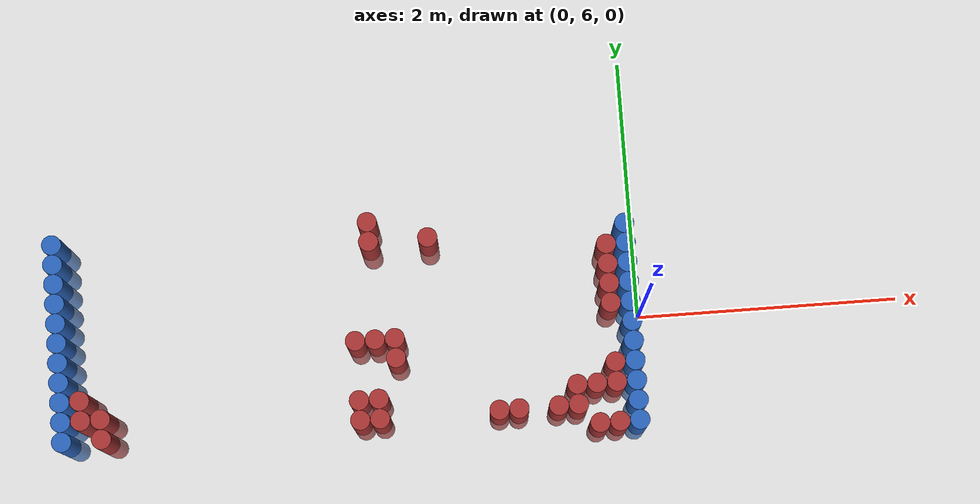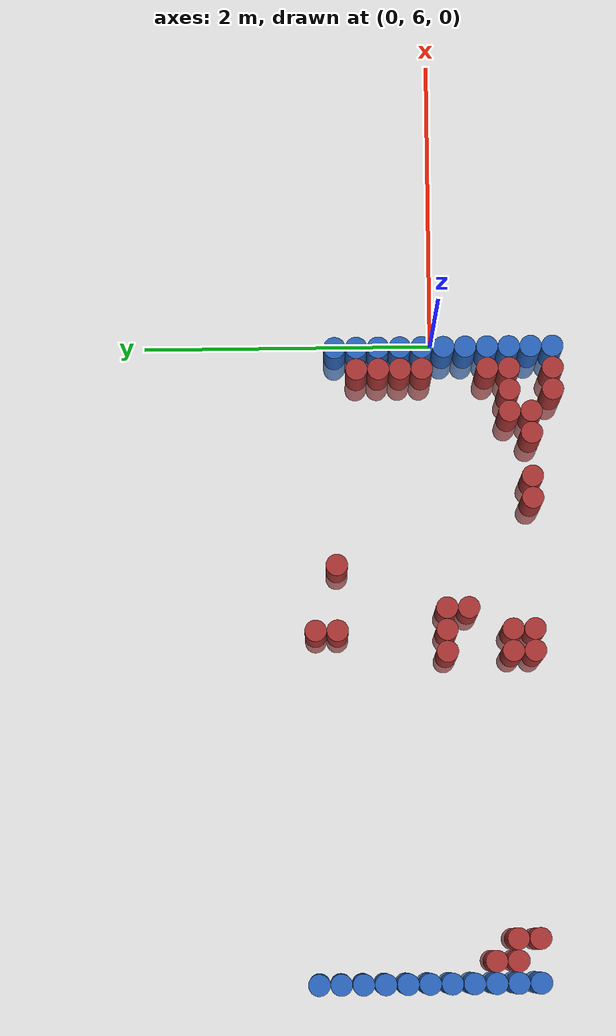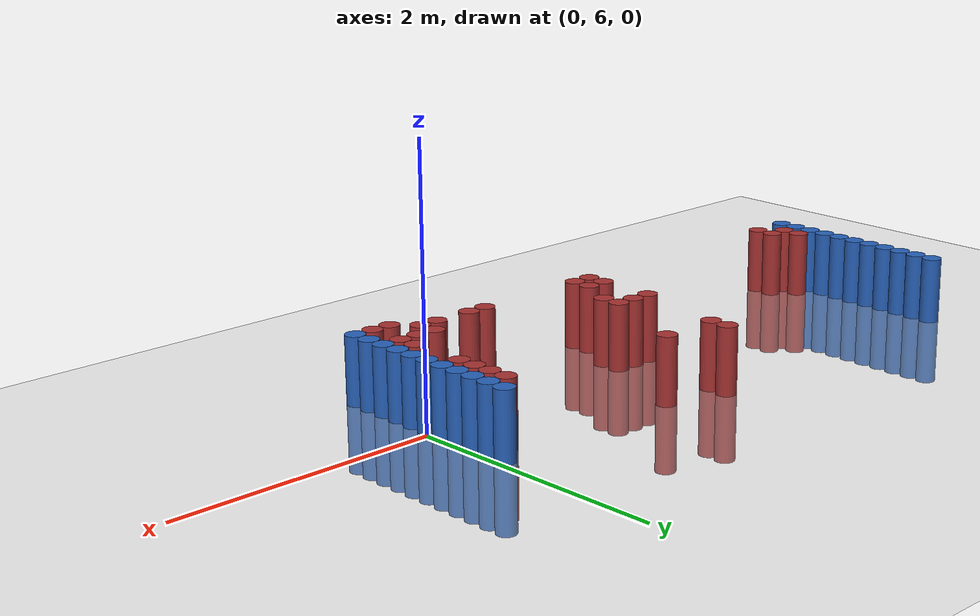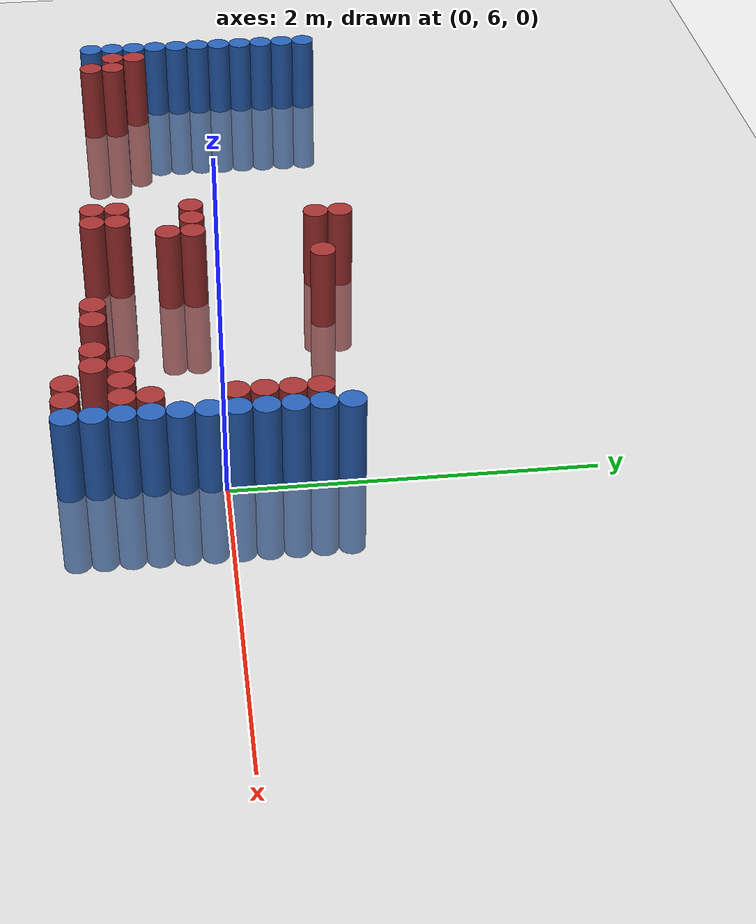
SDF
<sdf version="1.6">
 <world name="default">
  <model name="ground_plane">
   <static>1</static>
   <link name="link">
    <collision name="collision">
     <geometry><plane><normal>0 0 1</normal><size>100 100</size></plane></geometry>
     <surface><friction><ode><mu>100</mu><mu2>50</mu2></ode></friction></surface>
    </collision>
    <visual name="visual">
     <cast_shadows>0</cast_shadows>
     <geometry><plane><normal>0 0 1</normal><size>100 100</size></plane></geometry>
     <material>
      <script><uri>file://media/materials/scripts/gazebo.material</uri><name>Gazebo/Grey</name></script>
     </material>
    </visual>
   </link>
  </model>
  <model name="unit_cylinder_97">
   <static>1</static>
   <pose>-4.425000 5.325000 0.000000 0.000000 0.000000 0.000000</pose>
   <link name="link">
    <inertial>
     <mass>1</mass>
     <inertia><ixx>0.145833</ixx><ixy>0</ixy><ixz>0</ixz><iyy>0.145833</iyy><iyz>0</iyz><izz>0.125</izz></inertia>
    </inertial>
    <collision name="collision">
     <geometry><cylinder><radius>0.075000</radius><length>1</length></cylinder></geometry>
    </collision>
    <visual name="visual">
     <geometry><cylinder><radius>0.075000</radius><length>1</length></cylinder></geometry>
     <material>
      <ambient>0.152000 0.379000 0.720000 1</ambient>
      <diffuse>0.152000 0.379000 0.720000 1</diffuse>
     </material>
     <material>
      <script><name>Gazebo/Grey</name><uri>file://media/materials/scripts/gazebo.material</uri></script>
     </material>
    </visual>
   </link>
  </model>
  <model name="unit_cylinder_98">
   <static>1</static>
   <pose>-4.425000 5.475000 0.000000 0.000000 0.000000 0.000000</pose>
   <link name="link">
    <inertial>
     <mass>1</mass>
     <inertia><ixx>0.145833</ixx><ixy>0</ixy><ixz>0</ixz><iyy>0.145833</iyy><iyz>0</iyz><izz>0.125</izz></inertia>
    </inertial>
    <collision name="collision">
     <geometry><cylinder><radius>0.075000</radius><length>1</length></cylinder></geometry>
    </collision>
    <visual name="visual">
     <geometry><cylinder><radius>0.075000</radius><length>1</length></cylinder></geometry>
     <material>
      <ambient>0.152000 0.379000 0.720000 1</ambient>
      <diffuse>0.152000 0.379000 0.720000 1</diffuse>
     </material>
     <material>
      <script><name>Gazebo/Grey</name><uri>file://media/materials/scripts/gazebo.material</uri></script>
     </material>
    </visual>
   </link>
  </model>
  <model name="unit_cylinder_99">
   <static>1</static>
   <pose>-4.425000 5.625000 0.000000 0.000000 0.000000 0.000000</pose>
   <link name="link">
    <inertial>
     <mass>1</mass>
     <inertia><ixx>0.145833</ixx><ixy>0</ixy><ixz>0</ixz><iyy>0.145833</iyy><iyz>0</iyz><izz>0.125</izz></inertia>
    </inertial>
    <collision name="collision">
     <geometry><cylinder><radius>0.075000</radius><length>1</length></cylinder></geometry>
    </collision>
    <visual name="visual">
     <geometry><cylinder><radius>0.075000</radius><length>1</length></cylinder></geometry>
     <material>
      <ambient>0.152000 0.379000 0.720000 1</ambient>
      <diffuse>0.152000 0.379000 0.720000 1</diffuse>
     </material>
     <material>
      <script><name>Gazebo/Grey</name><uri>file://media/materials/scripts/gazebo.material</uri></script>
     </material>
    </visual>
   </link>
  </model>
  <model name="unit_cylinder_100">
   <static>1</static>
   <pose>-4.425000 5.775000 0.000000 0.000000 0.000000 0.000000</pose>
   <link name="link">
    <inertial>
     <mass>1</mass>
     <inertia><ixx>0.145833</ixx><ixy>0</ixy><ixz>0</ixz><iyy>0.145833</iyy><iyz>0</iyz><izz>0.125</izz></inertia>
    </inertial>
    <collision name="collision">
     <geometry><cylinder><radius>0.075000</radius><length>1</length></cylinder></geometry>
    </collision>
    <visual name="visual">
     <geometry><cylinder><radius>0.075000</radius><length>1</length></cylinder></geometry>
     <material>
      <ambient>0.152000 0.379000 0.720000 1</ambient>
      <diffuse>0.152000 0.379000 0.720000 1</diffuse>
     </material>
     <material>
      <script><name>Gazebo/Grey</name><uri>file://media/materials/scripts/gazebo.material</uri></script>
     </material>
    </visual>
   </link>
  </model>
  <model name="unit_cylinder_101">
   <static>1</static>
   <pose>-4.425000 5.925000 0.000000 0.000000 0.000000 0.000000</pose>
   <link name="link">
    <inertial>
     <mass>1</mass>
     <inertia><ixx>0.145833</ixx><ixy>0</ixy><ixz>0</ixz><iyy>0.145833</iyy><iyz>0</iyz><izz>0.125</izz></inertia>
    </inertial>
    <collision name="collision">
     <geometry><cylinder><radius>0.075000</radius><length>1</length></cylinder></geometry>
    </collision>
    <visual name="visual">
     <geometry><cylinder><radius>0.075000</radius><length>1</length></cylinder></geometry>
     <material>
      <ambient>0.152000 0.379000 0.720000 1</ambient>
      <diffuse>0.152000 0.379000 0.720000 1</diffuse>
     </material>
     <material>
      <script><name>Gazebo/Grey</name><uri>file://media/materials/scripts/gazebo.material</uri></script>
     </material>
    </visual>
   </link>
  </model>
  <model name="unit_cylinder_102">
   <static>1</static>
   <pose>-4.425000 6.075000 0.000000 0.000000 0.000000 0.000000</pose>
   <link name="link">
    <inertial>
     <mass>1</mass>
     <inertia><ixx>0.145833</ixx><ixy>0</ixy><ixz>0</ixz><iyy>0.145833</iyy><iyz>0</iyz><izz>0.125</izz></inertia>
    </inertial>
    <collision name="collision">
     <geometry><cylinder><radius>0.075000</radius><length>1</length></cylinder></geometry>
    </collision>
    <visual name="visual">
     <geometry><cylinder><radius>0.075000</radius><length>1</length></cylinder></geometry>
     <material>
      <ambient>0.152000 0.379000 0.720000 1</ambient>
      <diffuse>0.152000 0.379000 0.720000 1</diffuse>
     </material>
     <material>
      <script><name>Gazebo/Grey</name><uri>file://media/materials/scripts/gazebo.material</uri></script>
     </material>
    </visual>
   </link>
  </model>
  <model name="unit_cylinder_103">
   <static>1</static>
   <pose>-4.425000 6.225000 0.000000 0.000000 0.000000 0.000000</pose>
   <link name="link">
    <inertial>
     <mass>1</mass>
     <inertia><ixx>0.145833</ixx><ixy>0</ixy><ixz>0</ixz><iyy>0.145833</iyy><iyz>0</iyz><izz>0.125</izz></inertia>
    </inertial>
    <collision name="collision">
     <geometry><cylinder><radius>0.075000</radius><length>1</length></cylinder></geometry>
    </collision>
    <visual name="visual">
     <geometry><cylinder><radius>0.075000</radius><length>1</length></cylinder></geometry>
     <material>
      <ambient>0.152000 0.379000 0.720000 1</ambient>
      <diffuse>0.152000 0.379000 0.720000 1</diffuse>
     </material>
     <material>
      <script><name>Gazebo/Grey</name><uri>file://media/materials/scripts/gazebo.material</uri></script>
     </material>
    </visual>
   </link>
  </model>
  <model name="unit_cylinder_104">
   <static>1</static>
   <pose>-4.425000 6.375000 0.000000 0.000000 0.000000 0.000000</pose>
   <link name="link">
    <inertial>
     <mass>1</mass>
     <inertia><ixx>0.145833</ixx><ixy>0</ixy><ixz>0</ixz><iyy>0.145833</iyy><iyz>0</iyz><izz>0.125</izz></inertia>
    </inertial>
    <collision name="collision">
     <geometry><cylinder><radius>0.075000</radius><length>1</length></cylinder></geometry>
    </collision>
    <visual name="visual">
     <geometry><cylinder><radius>0.075000</radius><length>1</length></cylinder></geometry>
     <material>
      <ambient>0.152000 0.379000 0.720000 1</ambient>
      <diffuse>0.152000 0.379000 0.720000 1</diffuse>
     </material>
     <material>
      <script><name>Gazebo/Grey</name><uri>file://media/materials/scripts/gazebo.material</uri></script>
     </material>
    </visual>
   </link>
  </model>
  <model name="unit_cylinder_105">
   <static>1</static>
   <pose>-4.425000 6.525000 0.000000 0.000000 0.000000 0.000000</pose>
   <link name="link">
    <inertial>
     <mass>1</mass>
     <inertia><ixx>0.145833</ixx><ixy>0</ixy><ixz>0</ixz><iyy>0.145833</iyy><iyz>0</iyz><izz>0.125</izz></inertia>
    </inertial>
    <collision name="collision">
     <geometry><cylinder><radius>0.075000</radius><length>1</length></cylinder></geometry>
    </collision>
    <visual name="visual">
     <geometry><cylinder><radius>0.075000</radius><length>1</length></cylinder></geometry>
     <material>
      <ambient>0.152000 0.379000 0.720000 1</ambient>
      <diffuse>0.152000 0.379000 0.720000 1</diffuse>
     </material>
     <material>
      <script><name>Gazebo/Grey</name><uri>file://media/materials/scripts/gazebo.material</uri></script>
     </material>
    </visual>
   </link>
  </model>
  <model name="unit_cylinder_106">
   <static>1</static>
   <pose>-4.425000 6.675000 0.000000 0.000000 0.000000 0.000000</pose>
   <link name="link">
    <inertial>
     <mass>1</mass>
     <inertia><ixx>0.145833</ixx><ixy>0</ixy><ixz>0</ixz><iyy>0.145833</iyy><iyz>0</iyz><izz>0.125</izz></inertia>
    </inertial>
    <collision name="collision">
     <geometry><cylinder><radius>0.075000</radius><length>1</length></cylinder></geometry>
    </collision>
    <visual name="visual">
     <geometry><cylinder><radius>0.075000</radius><length>1</length></cylinder></geometry>
     <material>
      <ambient>0.152000 0.379000 0.720000 1</ambient>
      <diffuse>0.152000 0.379000 0.720000 1</diffuse>
     </material>
     <material>
      <script><name>Gazebo/Grey</name><uri>file://media/materials/scripts/gazebo.material</uri></script>
     </material>
    </visual>
   </link>
  </model>
  <model name="unit_cylinder_107">
   <static>1</static>
   <pose>-4.425000 6.825000 0.000000 0.000000 0.000000 0.000000</pose>
   <link name="link">
    <inertial>
     <mass>1</mass>
     <inertia><ixx>0.145833</ixx><ixy>0</ixy><ixz>0</ixz><iyy>0.145833</iyy><iyz>0</iyz><izz>0.125</izz></inertia>
    </inertial>
    <collision name="collision">
     <geometry><cylinder><radius>0.075000</radius><length>1</length></cylinder></geometry>
    </collision>
    <visual name="visual">
     <geometry><cylinder><radius>0.075000</radius><length>1</length></cylinder></geometry>
     <material>
      <ambient>0.152000 0.379000 0.720000 1</ambient>
      <diffuse>0.152000 0.379000 0.720000 1</diffuse>
     </material>
     <material>
      <script><name>Gazebo/Grey</name><uri>file://media/materials/scripts/gazebo.material</uri></script>
     </material>
    </visual>
   </link>
  </model>
  <model name="unit_cylinder_127">
   <static>1</static>
   <pose>-4.275000 5.475000 0.000000 0.000000 0.000000 0.000000</pose>
   <link name="link">
    <inertial>
     <mass>1</mass>
     <inertia><ixx>0.145833</ixx><ixy>0</ixy><ixz>0</ixz><iyy>0.145833</iyy><iyz>0</iyz><izz>0.125</izz></inertia>
    </inertial>
    <collision name="collision">
     <geometry><cylinder><radius>0.075000</radius><length>1</length></cylinder></geometry>
    </collision>
    <visual name="visual">
     <geometry><cylinder><radius>0.075000</radius><length>1</length></cylinder></geometry>
     <material>
      <ambient>0.648000 0.192000 0.192000 1</ambient>
      <diffuse>0.648000 0.192000 0.192000 1</diffuse>
     </material>
     <material>
      <script><name>Gazebo/Grey</name><uri>file://media/materials/scripts/gazebo.material</uri></script>
     </material>
    </visual>
   </link>
  </model>
  <model name="unit_cylinder_128">
   <static>1</static>
   <pose>-4.275000 5.625000 0.000000 0.000000 0.000000 0.000000</pose>
   <link name="link">
    <inertial>
     <mass>1</mass>
     <inertia><ixx>0.145833</ixx><ixy>0</ixy><ixz>0</ixz><iyy>0.145833</iyy><iyz>0</iyz><izz>0.125</izz></inertia>
    </inertial>
    <collision name="collision">
     <geometry><cylinder><radius>0.075000</radius><length>1</length></cylinder></geometry>
    </collision>
    <visual name="visual">
     <geometry><cylinder><radius>0.075000</radius><length>1</length></cylinder></geometry>
     <material>
      <ambient>0.648000 0.192000 0.192000 1</ambient>
      <diffuse>0.648000 0.192000 0.192000 1</diffuse>
     </material>
     <material>
      <script><name>Gazebo/Grey</name><uri>file://media/materials/scripts/gazebo.material</uri></script>
     </material>
    </visual>
   </link>
  </model>
  <model name="unit_cylinder_143">
   <static>1</static>
   <pose>-4.125000 5.325000 0.000000 0.000000 0.000000 0.000000</pose>
   <link name="link">
    <inertial>
     <mass>1</mass>
     <inertia><ixx>0.145833</ixx><ixy>0</ixy><ixz>0</ixz><iyy>0.145833</iyy><iyz>0</iyz><izz>0.125</izz></inertia>
    </inertial>
    <collision name="collision">
     <geometry><cylinder><radius>0.075000</radius><length>1</length></cylinder></geometry>
    </collision>
    <visual name="visual">
     <geometry><cylinder><radius>0.075000</radius><length>1</length></cylinder></geometry>
     <material>
      <ambient>0.648000 0.192000 0.192000 1</ambient>
      <diffuse>0.648000 0.192000 0.192000 1</diffuse>
     </material>
     <material>
      <script><name>Gazebo/Grey</name><uri>file://media/materials/scripts/gazebo.material</uri></script>
     </material>
    </visual>
   </link>
  </model>
  <model name="unit_cylinder_144">
   <static>1</static>
   <pose>-4.125000 5.475000 0.000000 0.000000 0.000000 0.000000</pose>
   <link name="link">
    <inertial>
     <mass>1</mass>
     <inertia><ixx>0.145833</ixx><ixy>0</ixy><ixz>0</ixz><iyy>0.145833</iyy><iyz>0</iyz><izz>0.125</izz></inertia>
    </inertial>
    <collision name="collision">
     <geometry><cylinder><radius>0.075000</radius><length>1</length></cylinder></geometry>
    </collision>
    <visual name="visual">
     <geometry><cylinder><radius>0.075000</radius><length>1</length></cylinder></geometry>
     <material>
      <ambient>0.648000 0.192000 0.192000 1</ambient>
      <diffuse>0.648000 0.192000 0.192000 1</diffuse>
     </material>
     <material>
      <script><name>Gazebo/Grey</name><uri>file://media/materials/scripts/gazebo.material</uri></script>
     </material>
    </visual>
   </link>
  </model>
  <model name="unit_cylinder_170">
   <static>1</static>
   <pose>-2.175000 5.325000 0.000000 0.000000 0.000000 0.000000</pose>
   <link name="link">
    <inertial>
     <mass>1</mass>
     <inertia><ixx>0.145833</ixx><ixy>0</ixy><ixz>0</ixz><iyy>0.145833</iyy><iyz>0</iyz><izz>0.125</izz></inertia>
    </inertial>
    <collision name="collision">
     <geometry><cylinder><radius>0.075000</radius><length>1</length></cylinder></geometry>
    </collision>
    <visual name="visual">
     <geometry><cylinder><radius>0.075000</radius><length>1</length></cylinder></geometry>
     <material>
      <ambient>0.648000 0.192000 0.192000 1</ambient>
      <diffuse>0.648000 0.192000 0.192000 1</diffuse>
     </material>
     <material>
      <script><name>Gazebo/Grey</name><uri>file://media/materials/scripts/gazebo.material</uri></script>
     </material>
    </visual>
   </link>
  </model>
  <model name="unit_cylinder_171">
   <static>1</static>
   <pose>-2.175000 5.475000 0.000000 0.000000 0.000000 0.000000</pose>
   <link name="link">
    <inertial>
     <mass>1</mass>
     <inertia><ixx>0.145833</ixx><ixy>0</ixy><ixz>0</ixz><iyy>0.145833</iyy><iyz>0</iyz><izz>0.125</izz></inertia>
    </inertial>
    <collision name="collision">
     <geometry><cylinder><radius>0.075000</radius><length>1</length></cylinder></geometry>
    </collision>
    <visual name="visual">
     <geometry><cylinder><radius>0.075000</radius><length>1</length></cylinder></geometry>
     <material>
      <ambient>0.648000 0.192000 0.192000 1</ambient>
      <diffuse>0.648000 0.192000 0.192000 1</diffuse>
     </material>
     <material>
      <script><name>Gazebo/Grey</name><uri>file://media/materials/scripts/gazebo.material</uri></script>
     </material>
    </visual>
   </link>
  </model>
  <model name="unit_cylinder_172">
   <static>1</static>
   <pose>-2.175000 5.925000 0.000000 0.000000 0.000000 0.000000</pose>
   <link name="link">
    <inertial>
     <mass>1</mass>
     <inertia><ixx>0.145833</ixx><ixy>0</ixy><ixz>0</ixz><iyy>0.145833</iyy><iyz>0</iyz><izz>0.125</izz></inertia>
    </inertial>
    <collision name="collision">
     <geometry><cylinder><radius>0.075000</radius><length>1</length></cylinder></geometry>
    </collision>
    <visual name="visual">
     <geometry><cylinder><radius>0.075000</radius><length>1</length></cylinder></geometry>
     <material>
      <ambient>0.648000 0.192000 0.192000 1</ambient>
      <diffuse>0.648000 0.192000 0.192000 1</diffuse>
     </material>
     <material>
      <script><name>Gazebo/Grey</name><uri>file://media/materials/scripts/gazebo.material</uri></script>
     </material>
    </visual>
   </link>
  </model>
  <model name="unit_cylinder_173">
   <static>1</static>
   <pose>-2.025000 5.325000 0.000000 0.000000 0.000000 0.000000</pose>
   <link name="link">
    <inertial>
     <mass>1</mass>
     <inertia><ixx>0.145833</ixx><ixy>0</ixy><ixz>0</ixz><iyy>0.145833</iyy><iyz>0</iyz><izz>0.125</izz></inertia>
    </inertial>
    <collision name="collision">
     <geometry><cylinder><radius>0.075000</radius><length>1</length></cylinder></geometry>
    </collision>
    <visual name="visual">
     <geometry><cylinder><radius>0.075000</radius><length>1</length></cylinder></geometry>
     <material>
      <ambient>0.648000 0.192000 0.192000 1</ambient>
      <diffuse>0.648000 0.192000 0.192000 1</diffuse>
     </material>
     <material>
      <script><name>Gazebo/Grey</name><uri>file://media/materials/scripts/gazebo.material</uri></script>
     </material>
    </visual>
   </link>
  </model>
  <model name="unit_cylinder_174">
   <static>1</static>
   <pose>-2.025000 5.475000 0.000000 0.000000 0.000000 0.000000</pose>
   <link name="link">
    <inertial>
     <mass>1</mass>
     <inertia><ixx>0.145833</ixx><ixy>0</ixy><ixz>0</ixz><iyy>0.145833</iyy><iyz>0</iyz><izz>0.125</izz></inertia>
    </inertial>
    <collision name="collision">
     <geometry><cylinder><radius>0.075000</radius><length>1</length></cylinder></geometry>
    </collision>
    <visual name="visual">
     <geometry><cylinder><radius>0.075000</radius><length>1</length></cylinder></geometry>
     <material>
      <ambient>0.648000 0.192000 0.192000 1</ambient>
      <diffuse>0.648000 0.192000 0.192000 1</diffuse>
     </material>
     <material>
      <script><name>Gazebo/Grey</name><uri>file://media/materials/scripts/gazebo.material</uri></script>
     </material>
    </visual>
   </link>
  </model>
  <model name="unit_cylinder_175">
   <static>1</static>
   <pose>-2.025000 5.925000 0.000000 0.000000 0.000000 0.000000</pose>
   <link name="link">
    <inertial>
     <mass>1</mass>
     <inertia><ixx>0.145833</ixx><ixy>0</ixy><ixz>0</ixz><iyy>0.145833</iyy><iyz>0</iyz><izz>0.125</izz></inertia>
    </inertial>
    <collision name="collision">
     <geometry><cylinder><radius>0.075000</radius><length>1</length></cylinder></geometry>
    </collision>
    <visual name="visual">
     <geometry><cylinder><radius>0.075000</radius><length>1</length></cylinder></geometry>
     <material>
      <ambient>0.648000 0.192000 0.192000 1</ambient>
      <diffuse>0.648000 0.192000 0.192000 1</diffuse>
     </material>
     <material>
      <script><name>Gazebo/Grey</name><uri>file://media/materials/scripts/gazebo.material</uri></script>
     </material>
    </visual>
   </link>
  </model>
  <model name="unit_cylinder_176">
   <static>1</static>
   <pose>-2.025000 6.675000 0.000000 0.000000 0.000000 0.000000</pose>
   <link name="link">
    <inertial>
     <mass>1</mass>
     <inertia><ixx>0.145833</ixx><ixy>0</ixy><ixz>0</ixz><iyy>0.145833</iyy><iyz>0</iyz><izz>0.125</izz></inertia>
    </inertial>
    <collision name="collision">
     <geometry><cylinder><radius>0.075000</radius><length>1</length></cylinder></geometry>
    </collision>
    <visual name="visual">
     <geometry><cylinder><radius>0.075000</radius><length>1</length></cylinder></geometry>
     <material>
      <ambient>0.648000 0.192000 0.192000 1</ambient>
      <diffuse>0.648000 0.192000 0.192000 1</diffuse>
     </material>
     <material>
      <script><name>Gazebo/Grey</name><uri>file://media/materials/scripts/gazebo.material</uri></script>
     </material>
    </visual>
   </link>
  </model>
  <model name="unit_cylinder_177">
   <static>1</static>
   <pose>-2.025000 6.825000 0.000000 0.000000 0.000000 0.000000</pose>
   <link name="link">
    <inertial>
     <mass>1</mass>
     <inertia><ixx>0.145833</ixx><ixy>0</ixy><ixz>0</ixz><iyy>0.145833</iyy><iyz>0</iyz><izz>0.125</izz></inertia>
    </inertial>
    <collision name="collision">
     <geometry><cylinder><radius>0.075000</radius><length>1</length></cylinder></geometry>
    </collision>
    <visual name="visual">
     <geometry><cylinder><radius>0.075000</radius><length>1</length></cylinder></geometry>
     <material>
      <ambient>0.648000 0.192000 0.192000 1</ambient>
      <diffuse>0.648000 0.192000 0.192000 1</diffuse>
     </material>
     <material>
      <script><name>Gazebo/Grey</name><uri>file://media/materials/scripts/gazebo.material</uri></script>
     </material>
    </visual>
   </link>
  </model>
  <model name="unit_cylinder_178">
   <static>1</static>
   <pose>-1.875000 5.775000 0.000000 0.000000 0.000000 0.000000</pose>
   <link name="link">
    <inertial>
     <mass>1</mass>
     <inertia><ixx>0.145833</ixx><ixy>0</ixy><ixz>0</ixz><iyy>0.145833</iyy><iyz>0</iyz><izz>0.125</izz></inertia>
    </inertial>
    <collision name="collision">
     <geometry><cylinder><radius>0.075000</radius><length>1</length></cylinder></geometry>
    </collision>
    <visual name="visual">
     <geometry><cylinder><radius>0.075000</radius><length>1</length></cylinder></geometry>
     <material>
      <ambient>0.648000 0.192000 0.192000 1</ambient>
      <diffuse>0.648000 0.192000 0.192000 1</diffuse>
     </material>
     <material>
      <script><name>Gazebo/Grey</name><uri>file://media/materials/scripts/gazebo.material</uri></script>
     </material>
    </visual>
   </link>
  </model>
  <model name="unit_cylinder_179">
   <static>1</static>
   <pose>-1.875000 5.925000 0.000000 0.000000 0.000000 0.000000</pose>
   <link name="link">
    <inertial>
     <mass>1</mass>
     <inertia><ixx>0.145833</ixx><ixy>0</ixy><ixz>0</ixz><iyy>0.145833</iyy><iyz>0</iyz><izz>0.125</izz></inertia>
    </inertial>
    <collision name="collision">
     <geometry><cylinder><radius>0.075000</radius><length>1</length></cylinder></geometry>
    </collision>
    <visual name="visual">
     <geometry><cylinder><radius>0.075000</radius><length>1</length></cylinder></geometry>
     <material>
      <ambient>0.648000 0.192000 0.192000 1</ambient>
      <diffuse>0.648000 0.192000 0.192000 1</diffuse>
     </material>
     <material>
      <script><name>Gazebo/Grey</name><uri>file://media/materials/scripts/gazebo.material</uri></script>
     </material>
    </visual>
   </link>
  </model>
  <model name="unit_cylinder_181">
   <static>1</static>
   <pose>-1.575000 6.675000 0.000000 0.000000 0.000000 0.000000</pose>
   <link name="link">
    <inertial>
     <mass>1</mass>
     <inertia><ixx>0.145833</ixx><ixy>0</ixy><ixz>0</ixz><iyy>0.145833</iyy><iyz>0</iyz><izz>0.125</izz></inertia>
    </inertial>
    <collision name="collision">
     <geometry><cylinder><radius>0.075000</radius><length>1</length></cylinder></geometry>
    </collision>
    <visual name="visual">
     <geometry><cylinder><radius>0.075000</radius><length>1</length></cylinder></geometry>
     <material>
      <ambient>0.648000 0.192000 0.192000 1</ambient>
      <diffuse>0.648000 0.192000 0.192000 1</diffuse>
     </material>
     <material>
      <script><name>Gazebo/Grey</name><uri>file://media/materials/scripts/gazebo.material</uri></script>
     </material>
    </visual>
   </link>
  </model>
  <model name="unit_cylinder_184">
   <static>1</static>
   <pose>-1.125000 5.325000 0.000000 0.000000 0.000000 0.000000</pose>
   <link name="link">
    <inertial>
     <mass>1</mass>
     <inertia><ixx>0.145833</ixx><ixy>0</ixy><ixz>0</ixz><iyy>0.145833</iyy><iyz>0</iyz><izz>0.125</izz></inertia>
    </inertial>
    <collision name="collision">
     <geometry><cylinder><radius>0.075000</radius><length>1</length></cylinder></geometry>
    </collision>
    <visual name="visual">
     <geometry><cylinder><radius>0.075000</radius><length>1</length></cylinder></geometry>
     <material>
      <ambient>0.648000 0.192000 0.192000 1</ambient>
      <diffuse>0.648000 0.192000 0.192000 1</diffuse>
     </material>
     <material>
      <script><name>Gazebo/Grey</name><uri>file://media/materials/scripts/gazebo.material</uri></script>
     </material>
    </visual>
   </link>
  </model>
  <model name="unit_cylinder_188">
   <static>1</static>
   <pose>-0.975000 5.325000 0.000000 0.000000 0.000000 0.000000</pose>
   <link name="link">
    <inertial>
     <mass>1</mass>
     <inertia><ixx>0.145833</ixx><ixy>0</ixy><ixz>0</ixz><iyy>0.145833</iyy><iyz>0</iyz><izz>0.125</izz></inertia>
    </inertial>
    <collision name="collision">
     <geometry><cylinder><radius>0.075000</radius><length>1</length></cylinder></geometry>
    </collision>
    <visual name="visual">
     <geometry><cylinder><radius>0.075000</radius><length>1</length></cylinder></geometry>
     <material>
      <ambient>0.648000 0.192000 0.192000 1</ambient>
      <diffuse>0.648000 0.192000 0.192000 1</diffuse>
     </material>
     <material>
      <script><name>Gazebo/Grey</name><uri>file://media/materials/scripts/gazebo.material</uri></script>
     </material>
    </visual>
   </link>
  </model>
  <model name="unit_cylinder_193">
   <static>1</static>
   <pose>-0.675000 5.325000 0.000000 0.000000 0.000000 0.000000</pose>
   <link name="link">
    <inertial>
     <mass>1</mass>
     <inertia><ixx>0.145833</ixx><ixy>0</ixy><ixz>0</ixz><iyy>0.145833</iyy><iyz>0</iyz><izz>0.125</izz></inertia>
    </inertial>
    <collision name="collision">
     <geometry><cylinder><radius>0.075000</radius><length>1</length></cylinder></geometry>
    </collision>
    <visual name="visual">
     <geometry><cylinder><radius>0.075000</radius><length>1</length></cylinder></geometry>
     <material>
      <ambient>0.648000 0.192000 0.192000 1</ambient>
      <diffuse>0.648000 0.192000 0.192000 1</diffuse>
     </material>
     <material>
      <script><name>Gazebo/Grey</name><uri>file://media/materials/scripts/gazebo.material</uri></script>
     </material>
    </visual>
   </link>
  </model>
  <model name="unit_cylinder_197">
   <static>1</static>
   <pose>-0.525000 5.325000 0.000000 0.000000 0.000000 0.000000</pose>
   <link name="link">
    <inertial>
     <mass>1</mass>
     <inertia><ixx>0.145833</ixx><ixy>0</ixy><ixz>0</ixz><iyy>0.145833</iyy><iyz>0</iyz><izz>0.125</izz></inertia>
    </inertial>
    <collision name="collision">
     <geometry><cylinder><radius>0.075000</radius><length>1</length></cylinder></geometry>
    </collision>
    <visual name="visual">
     <geometry><cylinder><radius>0.075000</radius><length>1</length></cylinder></geometry>
     <material>
      <ambient>0.648000 0.192000 0.192000 1</ambient>
      <diffuse>0.648000 0.192000 0.192000 1</diffuse>
     </material>
     <material>
      <script><name>Gazebo/Grey</name><uri>file://media/materials/scripts/gazebo.material</uri></script>
     </material>
    </visual>
   </link>
  </model>
  <model name="unit_cylinder_198">
   <static>1</static>
   <pose>-0.525000 5.475000 0.000000 0.000000 0.000000 0.000000</pose>
   <link name="link">
    <inertial>
     <mass>1</mass>
     <inertia><ixx>0.145833</ixx><ixy>0</ixy><ixz>0</ixz><iyy>0.145833</iyy><iyz>0</iyz><izz>0.125</izz></inertia>
    </inertial>
    <collision name="collision">
     <geometry><cylinder><radius>0.075000</radius><length>1</length></cylinder></geometry>
    </collision>
    <visual name="visual">
     <geometry><cylinder><radius>0.075000</radius><length>1</length></cylinder></geometry>
     <material>
      <ambient>0.648000 0.192000 0.192000 1</ambient>
      <diffuse>0.648000 0.192000 0.192000 1</diffuse>
     </material>
     <material>
      <script><name>Gazebo/Grey</name><uri>file://media/materials/scripts/gazebo.material</uri></script>
     </material>
    </visual>
   </link>
  </model>
  <model name="unit_cylinder_202">
   <static>1</static>
   <pose>-0.375000 5.175000 0.000000 0.000000 0.000000 0.000000</pose>
   <link name="link">
    <inertial>
     <mass>1</mass>
     <inertia><ixx>0.145833</ixx><ixy>0</ixy><ixz>0</ixz><iyy>0.145833</iyy><iyz>0</iyz><izz>0.125</izz></inertia>
    </inertial>
    <collision name="collision">
     <geometry><cylinder><radius>0.075000</radius><length>1</length></cylinder></geometry>
    </collision>
    <visual name="visual">
     <geometry><cylinder><radius>0.075000</radius><length>1</length></cylinder></geometry>
     <material>
      <ambient>0.648000 0.192000 0.192000 1</ambient>
      <diffuse>0.648000 0.192000 0.192000 1</diffuse>
     </material>
     <material>
      <script><name>Gazebo/Grey</name><uri>file://media/materials/scripts/gazebo.material</uri></script>
     </material>
    </visual>
   </link>
  </model>
  <model name="unit_cylinder_203">
   <static>1</static>
   <pose>-0.375000 5.475000 0.000000 0.000000 0.000000 0.000000</pose>
   <link name="link">
    <inertial>
     <mass>1</mass>
     <inertia><ixx>0.145833</ixx><ixy>0</ixy><ixz>0</ixz><iyy>0.145833</iyy><iyz>0</iyz><izz>0.125</izz></inertia>
    </inertial>
    <collision name="collision">
     <geometry><cylinder><radius>0.075000</radius><length>1</length></cylinder></geometry>
    </collision>
    <visual name="visual">
     <geometry><cylinder><radius>0.075000</radius><length>1</length></cylinder></geometry>
     <material>
      <ambient>0.648000 0.192000 0.192000 1</ambient>
      <diffuse>0.648000 0.192000 0.192000 1</diffuse>
     </material>
     <material>
      <script><name>Gazebo/Grey</name><uri>file://media/materials/scripts/gazebo.material</uri></script>
     </material>
    </visual>
   </link>
  </model>
  <model name="unit_cylinder_208">
   <static>1</static>
   <pose>-0.225000 5.175000 0.000000 0.000000 0.000000 0.000000</pose>
   <link name="link">
    <inertial>
     <mass>1</mass>
     <inertia><ixx>0.145833</ixx><ixy>0</ixy><ixz>0</ixz><iyy>0.145833</iyy><iyz>0</iyz><izz>0.125</izz></inertia>
    </inertial>
    <collision name="collision">
     <geometry><cylinder><radius>0.075000</radius><length>1</length></cylinder></geometry>
    </collision>
    <visual name="visual">
     <geometry><cylinder><radius>0.075000</radius><length>1</length></cylinder></geometry>
     <material>
      <ambient>0.648000 0.192000 0.192000 1</ambient>
      <diffuse>0.648000 0.192000 0.192000 1</diffuse>
     </material>
     <material>
      <script><name>Gazebo/Grey</name><uri>file://media/materials/scripts/gazebo.material</uri></script>
     </material>
    </visual>
   </link>
  </model>
  <model name="unit_cylinder_209">
   <static>1</static>
   <pose>-0.225000 5.475000 0.000000 0.000000 0.000000 0.000000</pose>
   <link name="link">
    <inertial>
     <mass>1</mass>
     <inertia><ixx>0.145833</ixx><ixy>0</ixy><ixz>0</ixz><iyy>0.145833</iyy><iyz>0</iyz><izz>0.125</izz></inertia>
    </inertial>
    <collision name="collision">
     <geometry><cylinder><radius>0.075000</radius><length>1</length></cylinder></geometry>
    </collision>
    <visual name="visual">
     <geometry><cylinder><radius>0.075000</radius><length>1</length></cylinder></geometry>
     <material>
      <ambient>0.648000 0.192000 0.192000 1</ambient>
      <diffuse>0.648000 0.192000 0.192000 1</diffuse>
     </material>
     <material>
      <script><name>Gazebo/Grey</name><uri>file://media/materials/scripts/gazebo.material</uri></script>
     </material>
    </visual>
   </link>
  </model>
  <model name="unit_cylinder_210">
   <static>1</static>
   <pose>-0.225000 5.625000 0.000000 0.000000 0.000000 0.000000</pose>
   <link name="link">
    <inertial>
     <mass>1</mass>
     <inertia><ixx>0.145833</ixx><ixy>0</ixy><ixz>0</ixz><iyy>0.145833</iyy><iyz>0</iyz><izz>0.125</izz></inertia>
    </inertial>
    <collision name="collision">
     <geometry><cylinder><radius>0.075000</radius><length>1</length></cylinder></geometry>
    </collision>
    <visual name="visual">
     <geometry><cylinder><radius>0.075000</radius><length>1</length></cylinder></geometry>
     <material>
      <ambient>0.648000 0.192000 0.192000 1</ambient>
      <diffuse>0.648000 0.192000 0.192000 1</diffuse>
     </material>
     <material>
      <script><name>Gazebo/Grey</name><uri>file://media/materials/scripts/gazebo.material</uri></script>
     </material>
    </visual>
   </link>
  </model>
  <model name="unit_cylinder_211">
   <static>1</static>
   <pose>-0.225000 6.075000 0.000000 0.000000 0.000000 0.000000</pose>
   <link name="link">
    <inertial>
     <mass>1</mass>
     <inertia><ixx>0.145833</ixx><ixy>0</ixy><ixz>0</ixz><iyy>0.145833</iyy><iyz>0</iyz><izz>0.125</izz></inertia>
    </inertial>
    <collision name="collision">
     <geometry><cylinder><radius>0.075000</radius><length>1</length></cylinder></geometry>
    </collision>
    <visual name="visual">
     <geometry><cylinder><radius>0.075000</radius><length>1</length></cylinder></geometry>
     <material>
      <ambient>0.648000 0.192000 0.192000 1</ambient>
      <diffuse>0.648000 0.192000 0.192000 1</diffuse>
     </material>
     <material>
      <script><name>Gazebo/Grey</name><uri>file://media/materials/scripts/gazebo.material</uri></script>
     </material>
    </visual>
   </link>
  </model>
  <model name="unit_cylinder_212">
   <static>1</static>
   <pose>-0.225000 6.225000 0.000000 0.000000 0.000000 0.000000</pose>
   <link name="link">
    <inertial>
     <mass>1</mass>
     <inertia><ixx>0.145833</ixx><ixy>0</ixy><ixz>0</ixz><iyy>0.145833</iyy><iyz>0</iyz><izz>0.125</izz></inertia>
    </inertial>
    <collision name="collision">
     <geometry><cylinder><radius>0.075000</radius><length>1</length></cylinder></geometry>
    </collision>
    <visual name="visual">
     <geometry><cylinder><radius>0.075000</radius><length>1</length></cylinder></geometry>
     <material>
      <ambient>0.648000 0.192000 0.192000 1</ambient>
      <diffuse>0.648000 0.192000 0.192000 1</diffuse>
     </material>
     <material>
      <script><name>Gazebo/Grey</name><uri>file://media/materials/scripts/gazebo.material</uri></script>
     </material>
    </visual>
   </link>
  </model>
  <model name="unit_cylinder_213">
   <static>1</static>
   <pose>-0.225000 6.375000 0.000000 0.000000 0.000000 0.000000</pose>
   <link name="link">
    <inertial>
     <mass>1</mass>
     <inertia><ixx>0.145833</ixx><ixy>0</ixy><ixz>0</ixz><iyy>0.145833</iyy><iyz>0</iyz><izz>0.125</izz></inertia>
    </inertial>
    <collision name="collision">
     <geometry><cylinder><radius>0.075000</radius><length>1</length></cylinder></geometry>
    </collision>
    <visual name="visual">
     <geometry><cylinder><radius>0.075000</radius><length>1</length></cylinder></geometry>
     <material>
      <ambient>0.648000 0.192000 0.192000 1</ambient>
      <diffuse>0.648000 0.192000 0.192000 1</diffuse>
     </material>
     <material>
      <script><name>Gazebo/Grey</name><uri>file://media/materials/scripts/gazebo.material</uri></script>
     </material>
    </visual>
   </link>
  </model>
  <model name="unit_cylinder_214">
   <static>1</static>
   <pose>-0.225000 6.525000 0.000000 0.000000 0.000000 0.000000</pose>
   <link name="link">
    <inertial>
     <mass>1</mass>
     <inertia><ixx>0.145833</ixx><ixy>0</ixy><ixz>0</ixz><iyy>0.145833</iyy><iyz>0</iyz><izz>0.125</izz></inertia>
    </inertial>
    <collision name="collision">
     <geometry><cylinder><radius>0.075000</radius><length>1</length></cylinder></geometry>
    </collision>
    <visual name="visual">
     <geometry><cylinder><radius>0.075000</radius><length>1</length></cylinder></geometry>
     <material>
      <ambient>0.648000 0.192000 0.192000 1</ambient>
      <diffuse>0.648000 0.192000 0.192000 1</diffuse>
     </material>
     <material>
      <script><name>Gazebo/Grey</name><uri>file://media/materials/scripts/gazebo.material</uri></script>
     </material>
    </visual>
   </link>
  </model>
  <model name="unit_cylinder_224">
   <static>1</static>
   <pose>-0.075000 5.175000 0.000000 0.000000 0.000000 0.000000</pose>
   <link name="link">
    <inertial>
     <mass>1</mass>
     <inertia><ixx>0.145833</ixx><ixy>0</ixy><ixz>0</ixz><iyy>0.145833</iyy><iyz>0</iyz><izz>0.125</izz></inertia>
    </inertial>
    <collision name="collision">
     <geometry><cylinder><radius>0.075000</radius><length>1</length></cylinder></geometry>
    </collision>
    <visual name="visual">
     <geometry><cylinder><radius>0.075000</radius><length>1</length></cylinder></geometry>
     <material>
      <ambient>0.152000 0.379000 0.720000 1</ambient>
      <diffuse>0.152000 0.379000 0.720000 1</diffuse>
     </material>
     <material>
      <script><name>Gazebo/Grey</name><uri>file://media/materials/scripts/gazebo.material</uri></script>
     </material>
    </visual>
   </link>
  </model>
  <model name="unit_cylinder_225">
   <static>1</static>
   <pose>-0.075000 5.325000 0.000000 0.000000 0.000000 0.000000</pose>
   <link name="link">
    <inertial>
     <mass>1</mass>
     <inertia><ixx>0.145833</ixx><ixy>0</ixy><ixz>0</ixz><iyy>0.145833</iyy><iyz>0</iyz><izz>0.125</izz></inertia>
    </inertial>
    <collision name="collision">
     <geometry><cylinder><radius>0.075000</radius><length>1</length></cylinder></geometry>
    </collision>
    <visual name="visual">
     <geometry><cylinder><radius>0.075000</radius><length>1</length></cylinder></geometry>
     <material>
      <ambient>0.152000 0.379000 0.720000 1</ambient>
      <diffuse>0.152000 0.379000 0.720000 1</diffuse>
     </material>
     <material>
      <script><name>Gazebo/Grey</name><uri>file://media/materials/scripts/gazebo.material</uri></script>
     </material>
    </visual>
   </link>
  </model>
  <model name="unit_cylinder_226">
   <static>1</static>
   <pose>-0.075000 5.475000 0.000000 0.000000 0.000000 0.000000</pose>
   <link name="link">
    <inertial>
     <mass>1</mass>
     <inertia><ixx>0.145833</ixx><ixy>0</ixy><ixz>0</ixz><iyy>0.145833</iyy><iyz>0</iyz><izz>0.125</izz></inertia>
    </inertial>
    <collision name="collision">
     <geometry><cylinder><radius>0.075000</radius><length>1</length></cylinder></geometry>
    </collision>
    <visual name="visual">
     <geometry><cylinder><radius>0.075000</radius><length>1</length></cylinder></geometry>
     <material>
      <ambient>0.152000 0.379000 0.720000 1</ambient>
      <diffuse>0.152000 0.379000 0.720000 1</diffuse>
     </material>
     <material>
      <script><name>Gazebo/Grey</name><uri>file://media/materials/scripts/gazebo.material</uri></script>
     </material>
    </visual>
   </link>
  </model>
  <model name="unit_cylinder_227">
   <static>1</static>
   <pose>-0.075000 5.625000 0.000000 0.000000 0.000000 0.000000</pose>
   <link name="link">
    <inertial>
     <mass>1</mass>
     <inertia><ixx>0.145833</ixx><ixy>0</ixy><ixz>0</ixz><iyy>0.145833</iyy><iyz>0</iyz><izz>0.125</izz></inertia>
    </inertial>
    <collision name="collision">
     <geometry><cylinder><radius>0.075000</radius><length>1</length></cylinder></geometry>
    </collision>
    <visual name="visual">
     <geometry><cylinder><radius>0.075000</radius><length>1</length></cylinder></geometry>
     <material>
      <ambient>0.152000 0.379000 0.720000 1</ambient>
      <diffuse>0.152000 0.379000 0.720000 1</diffuse>
     </material>
     <material>
      <script><name>Gazebo/Grey</name><uri>file://media/materials/scripts/gazebo.material</uri></script>
     </material>
    </visual>
   </link>
  </model>
  <model name="unit_cylinder_228">
   <static>1</static>
   <pose>-0.075000 5.775000 0.000000 0.000000 0.000000 0.000000</pose>
   <link name="link">
    <inertial>
     <mass>1</mass>
     <inertia><ixx>0.145833</ixx><ixy>0</ixy><ixz>0</ixz><iyy>0.145833</iyy><iyz>0</iyz><izz>0.125</izz></inertia>
    </inertial>
    <collision name="collision">
     <geometry><cylinder><radius>0.075000</radius><length>1</length></cylinder></geometry>
    </collision>
    <visual name="visual">
     <geometry><cylinder><radius>0.075000</radius><length>1</length></cylinder></geometry>
     <material>
      <ambient>0.152000 0.379000 0.720000 1</ambient>
      <diffuse>0.152000 0.379000 0.720000 1</diffuse>
     </material>
     <material>
      <script><name>Gazebo/Grey</name><uri>file://media/materials/scripts/gazebo.material</uri></script>
     </material>
    </visual>
   </link>
  </model>
  <model name="unit_cylinder_229">
   <static>1</static>
   <pose>-0.075000 5.925000 0.000000 0.000000 0.000000 0.000000</pose>
   <link name="link">
    <inertial>
     <mass>1</mass>
     <inertia><ixx>0.145833</ixx><ixy>0</ixy><ixz>0</ixz><iyy>0.145833</iyy><iyz>0</iyz><izz>0.125</izz></inertia>
    </inertial>
    <collision name="collision">
     <geometry><cylinder><radius>0.075000</radius><length>1</length></cylinder></geometry>
    </collision>
    <visual name="visual">
     <geometry><cylinder><radius>0.075000</radius><length>1</length></cylinder></geometry>
     <material>
      <ambient>0.152000 0.379000 0.720000 1</ambient>
      <diffuse>0.152000 0.379000 0.720000 1</diffuse>
     </material>
     <material>
      <script><name>Gazebo/Grey</name><uri>file://media/materials/scripts/gazebo.material</uri></script>
     </material>
    </visual>
   </link>
  </model>
  <model name="unit_cylinder_230">
   <static>1</static>
   <pose>-0.075000 6.075000 0.000000 0.000000 0.000000 0.000000</pose>
   <link name="link">
    <inertial>
     <mass>1</mass>
     <inertia><ixx>0.145833</ixx><ixy>0</ixy><ixz>0</ixz><iyy>0.145833</iyy><iyz>0</iyz><izz>0.125</izz></inertia>
    </inertial>
    <collision name="collision">
     <geometry><cylinder><radius>0.075000</radius><length>1</length></cylinder></geometry>
    </collision>
    <visual name="visual">
     <geometry><cylinder><radius>0.075000</radius><length>1</length></cylinder></geometry>
     <material>
      <ambient>0.152000 0.379000 0.720000 1</ambient>
      <diffuse>0.152000 0.379000 0.720000 1</diffuse>
     </material>
     <material>
      <script><name>Gazebo/Grey</name><uri>file://media/materials/scripts/gazebo.material</uri></script>
     </material>
    </visual>
   </link>
  </model>
  <model name="unit_cylinder_231">
   <static>1</static>
   <pose>-0.075000 6.225000 0.000000 0.000000 0.000000 0.000000</pose>
   <link name="link">
    <inertial>
     <mass>1</mass>
     <inertia><ixx>0.145833</ixx><ixy>0</ixy><ixz>0</ixz><iyy>0.145833</iyy><iyz>0</iyz><izz>0.125</izz></inertia>
    </inertial>
    <collision name="collision">
     <geometry><cylinder><radius>0.075000</radius><length>1</length></cylinder></geometry>
    </collision>
    <visual name="visual">
     <geometry><cylinder><radius>0.075000</radius><length>1</length></cylinder></geometry>
     <material>
      <ambient>0.152000 0.379000 0.720000 1</ambient>
      <diffuse>0.152000 0.379000 0.720000 1</diffuse>
     </material>
     <material>
      <script><name>Gazebo/Grey</name><uri>file://media/materials/scripts/gazebo.material</uri></script>
     </material>
    </visual>
   </link>
  </model>
  <model name="unit_cylinder_232">
   <static>1</static>
   <pose>-0.075000 6.375000 0.000000 0.000000 0.000000 0.000000</pose>
   <link name="link">
    <inertial>
     <mass>1</mass>
     <inertia><ixx>0.145833</ixx><ixy>0</ixy><ixz>0</ixz><iyy>0.145833</iyy><iyz>0</iyz><izz>0.125</izz></inertia>
    </inertial>
    <collision name="collision">
     <geometry><cylinder><radius>0.075000</radius><length>1</length></cylinder></geometry>
    </collision>
    <visual name="visual">
     <geometry><cylinder><radius>0.075000</radius><length>1</length></cylinder></geometry>
     <material>
      <ambient>0.152000 0.379000 0.720000 1</ambient>
      <diffuse>0.152000 0.379000 0.720000 1</diffuse>
     </material>
     <material>
      <script><name>Gazebo/Grey</name><uri>file://media/materials/scripts/gazebo.material</uri></script>
     </material>
    </visual>
   </link>
  </model>
  <model name="unit_cylinder_233">
   <static>1</static>
   <pose>-0.075000 6.525000 0.000000 0.000000 0.000000 0.000000</pose>
   <link name="link">
    <inertial>
     <mass>1</mass>
     <inertia><ixx>0.145833</ixx><ixy>0</ixy><ixz>0</ixz><iyy>0.145833</iyy><iyz>0</iyz><izz>0.125</izz></inertia>
    </inertial>
    <collision name="collision">
     <geometry><cylinder><radius>0.075000</radius><length>1</length></cylinder></geometry>
    </collision>
    <visual name="visual">
     <geometry><cylinder><radius>0.075000</radius><length>1</length></cylinder></geometry>
     <material>
      <ambient>0.152000 0.379000 0.720000 1</ambient>
      <diffuse>0.152000 0.379000 0.720000 1</diffuse>
     </material>
     <material>
      <script><name>Gazebo/Grey</name><uri>file://media/materials/scripts/gazebo.material</uri></script>
     </material>
    </visual>
   </link>
  </model>
  <model name="unit_cylinder_234">
   <static>1</static>
   <pose>-0.075000 6.675000 0.000000 0.000000 0.000000 0.000000</pose>
   <link name="link">
    <inertial>
     <mass>1</mass>
     <inertia><ixx>0.145833</ixx><ixy>0</ixy><ixz>0</ixz><iyy>0.145833</iyy><iyz>0</iyz><izz>0.125</izz></inertia>
    </inertial>
    <collision name="collision">
     <geometry><cylinder><radius>0.075000</radius><length>1</length></cylinder></geometry>
    </collision>
    <visual name="visual">
     <geometry><cylinder><radius>0.075000</radius><length>1</length></cylinder></geometry>
     <material>
      <ambient>0.152000 0.379000 0.720000 1</ambient>
      <diffuse>0.152000 0.379000 0.720000 1</diffuse>
     </material>
     <material>
      <script><name>Gazebo/Grey</name><uri>file://media/materials/scripts/gazebo.material</uri></script>
     </material>
    </visual>
   </link>
  </model>
 </world>
</sdf>
